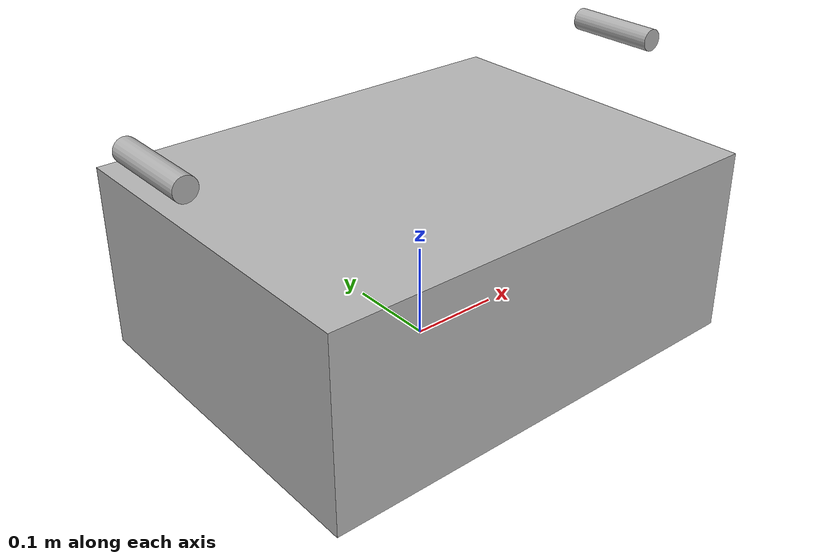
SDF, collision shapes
<?xml version="1.0" ?>
<sdf version="1.8">
  <model name="laundry_basket">
    <static>false</static>

    <!-- ── Main basket body ─────────────────────────────────────────────── -->
    <link name="basket">
      <pose>0 0 0 0 0 0</pose>

      <inertial>
        <!-- Lightweight plastic basket, ~1.5 kg -->
        <mass>1.5</mass>
        <inertia>
          <ixx>0.04</ixx> <ixy>0</ixy> <ixz>0</ixz>
          <iyy>0.06</iyy> <iyz>0</iyz>
          <izz>0.08</izz>
        </inertia>
      </inertial>

      <!-- Simplified box collision — bimanual grasping targets the handle links -->
      <collision name="basket_col">
        <pose>0 0 0.1 0 0 0</pose>
        <geometry>
          <box><size>0.50 0.38 0.2</size></box>
        </geometry>
        <surface>
          <friction>
            <ode><mu>0.6</mu><mu2>0.6</mu2></ode>
          </friction>
          <contact>
            <ode>
              <kp>100000</kp>
              <kd>1</kd>
            </ode>
          </contact>
        </surface>
      </collision>

      <!-- GLB mesh visual -->
      <visual name="basket_visual">
        <pose>0 0 0 1.5708 0 0</pose>
        <geometry>
          <mesh>
            <uri>model://laundry_basket/meshes/laundry_basket.glb</uri>
            <scale>1.0 1.0 1.0</scale>
          </mesh>
        </geometry>
      </visual>
    </link>

    <!-- ── Left handle link (bimanual grasp target — left arm) ──────────── -->
    <link name="handle_left">
      <!-- Left handle: +X side of basket rim (rotated 90° around Z from original ±Y placement).
           0.26 > 0.25 (half of box X=0.50) so the handle sits just outside the basket body. -->
      <pose>0.28 0.0 0.275 1.5708 0 0</pose>
      <inertial>
        <mass>0.05</mass>
        <inertia>
          <ixx>0.0001</ixx><ixy>0</ixy><ixz>0</ixz>
          <iyy>0.0001</iyy><iyz>0</iyz><izz>0.0001</izz>
        </inertia>
      </inertial>
      <collision name="handle_left_col">
        <geometry>
          <cylinder><radius>0.012</radius><length>0.10</length></cylinder>
        </geometry>
      </collision>
      <visual name="handle_left_vis">
        <geometry>
          <cylinder><radius>0.012</radius><length>0.10</length></cylinder>
        </geometry>
        <material>
          <ambient>0.7 0.7 0.7 1</ambient>
          <diffuse>0.7 0.7 0.7 1</diffuse>
        </material>
      </visual>
    </link>

    <!-- ── Right handle link (bimanual grasp target — right arm) ─────────── -->
    <link name="handle_right">
      <!-- Right handle: −X side of basket rim (rotated 90° around Z from original ±Y placement). -->
      <pose>-0.28 0.0 0.275 1.5708 0 0</pose>
      <inertial>
        <mass>0.05</mass>
        <inertia>
          <ixx>0.0001</ixx><ixy>0</ixy><ixz>0</ixz>
          <iyy>0.0001</iyy><iyz>0</iyz><izz>0.0001</izz>
        </inertia>
      </inertial>
      <collision name="handle_right_col">
        <geometry>
          <cylinder><radius>0.012</radius><length>0.10</length></cylinder>
        </geometry>
      </collision>
      <visual name="handle_right_vis">
        <geometry>
          <cylinder><radius>0.012</radius><length>0.10</length></cylinder>
        </geometry>
        <material>
          <ambient>0.7 0.7 0.7 1</ambient>
          <diffuse>0.7 0.7 0.7 1</diffuse>
        </material>
      </visual>
    </link>

    <!-- Fixed joints welding handles to basket body -->
    <joint name="left_handle_joint" type="fixed">
      <parent>basket</parent>
      <child>handle_left</child>
    </joint>

    <joint name="right_handle_joint" type="fixed">
      <parent>basket</parent>
      <child>handle_right</child>
    </joint>

  </model>
</sdf>
